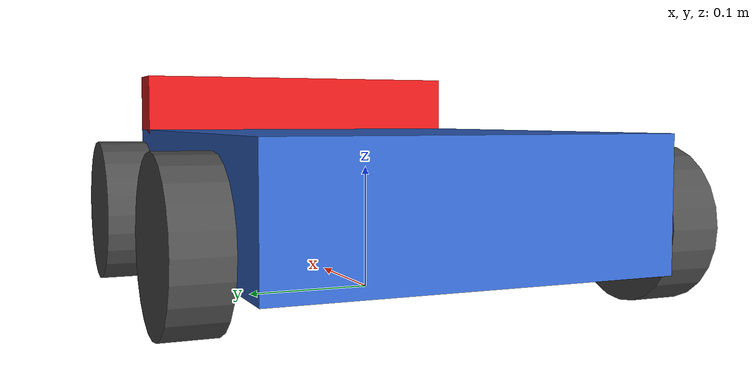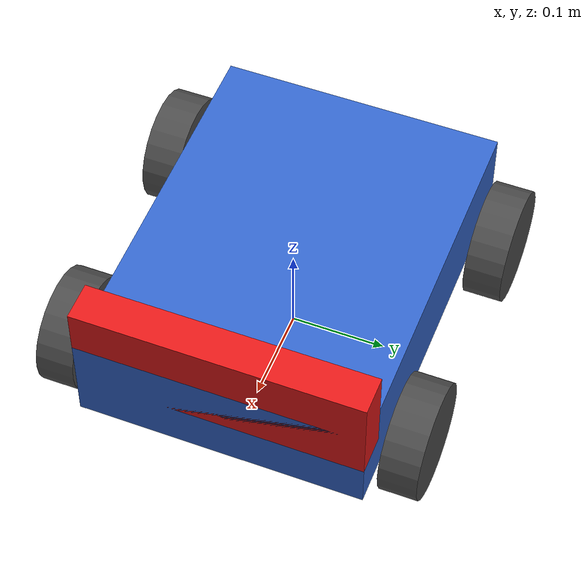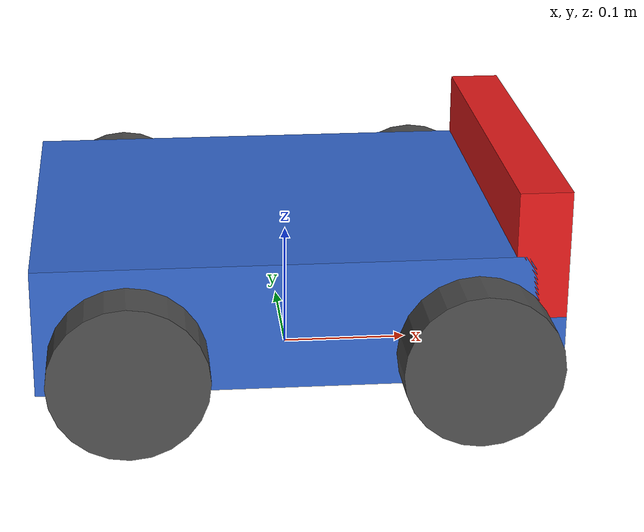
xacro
<?xml version="1.0"?>
<robot xmlns:xacro="http://www.ros.org/wiki/xacro" name="simple_rover">

  <!-- ==================== Parameters ==================== -->
  <xacro:property name="body_length" value="0.4"/>
  <xacro:property name="body_width"  value="0.3"/>
  <xacro:property name="body_height" value="0.1"/>
  <xacro:property name="body_mass"   value="5.0"/>

  <xacro:property name="wheel_radius" value="0.06"/>
  <xacro:property name="wheel_width"  value="0.04"/>
  <xacro:property name="wheel_mass"   value="0.5"/>

  <!-- Wheel placement offsets from base_link center -->
  <xacro:property name="wheel_x_front" value="0.13"/>
  <xacro:property name="wheel_x_rear"  value="-0.13"/>
  <xacro:property name="wheel_y"       value="${(body_width / 2) + (wheel_width / 2) + 0.01}"/>
  <xacro:property name="wheel_z"       value="-0.02"/>

  <!-- ==================== Materials ==================== -->
  <material name="blue">
    <color rgba="0.2 0.4 0.8 1.0"/>
  </material>
  <material name="dark_grey">
    <color rgba="0.3 0.3 0.3 1.0"/>
  </material>
  <material name="red">
    <color rgba="0.9 0.1 0.1 1.0"/>
  </material>

  <!-- ==================== Inertia Macros ==================== -->
  <xacro:macro name="box_inertia" params="m x y z">
    <inertial>
      <mass value="${m}"/>
      <inertia ixx="${m*(y*y+z*z)/12}" ixy="0" ixz="0"
               iyy="${m*(x*x+z*z)/12}" iyz="0"
               izz="${m*(x*x+y*y)/12}"/>
    </inertial>
  </xacro:macro>

  <xacro:macro name="cylinder_inertia" params="m r h">
    <inertial>
      <mass value="${m}"/>
      <inertia ixx="${m*(3*r*r+h*h)/12}" ixy="0" ixz="0"
               iyy="${m*(3*r*r+h*h)/12}" iyz="0"
               izz="${m*r*r/2}"/>
    </inertial>
  </xacro:macro>

  <!-- ==================== Wheel Macro ==================== -->
  <xacro:macro name="wheel" params="prefix x_offset y_sign">
    <link name="${prefix}_wheel_link">
      <visual>
        <geometry>
          <cylinder radius="${wheel_radius}" length="${wheel_width}"/>
        </geometry>
        <material name="dark_grey"/>
      </visual>
      <collision>
        <geometry>
          <cylinder radius="${wheel_radius}" length="${wheel_width}"/>
        </geometry>
      </collision>
      <xacro:cylinder_inertia m="${wheel_mass}" r="${wheel_radius}" h="${wheel_width}"/>
    </link>

    <joint name="${prefix}_wheel_joint" type="continuous">
      <parent link="base_link"/>
      <child link="${prefix}_wheel_link"/>
      <origin xyz="${x_offset} ${y_sign * wheel_y} ${wheel_z}" rpy="${-pi/2} 0 0"/>
      <axis xyz="0 0 1"/>
      <dynamics friction="1.0" damping="0.1"/>
    </joint>
  </xacro:macro>

  <!-- ==================== Base Link ==================== -->
  <link name="base_link">
    <visual>
      <geometry>
        <box size="${body_length} ${body_width} ${body_height}"/>
      </geometry>
      <material name="blue"/>
    </visual>
    <collision>
      <geometry>
        <box size="${body_length} ${body_width} ${body_height}"/>
      </geometry>
    </collision>
    <xacro:box_inertia m="${body_mass}" x="${body_length}" y="${body_width}" z="${body_height}"/>
  </link>

  <!-- Front marker (visual only, no collision/inertia) -->
  <link name="front_marker_link">
    <visual>
      <geometry>
        <box size="0.04 ${body_width} ${body_height}"/>
      </geometry>
      <material name="red"/>
    </visual>
  </link>
  <joint name="front_marker_joint" type="fixed">
    <parent link="base_link"/>
    <child link="front_marker_link"/>
    <origin xyz="${body_length / 2 - 0.02} 0 0.05" rpy="0 0 0"/>
  </joint>

  <!-- base_footprint (on the ground) -->
  <link name="base_footprint"/>
  <joint name="base_footprint_joint" type="fixed">
    <parent link="base_footprint"/>
    <child link="base_link"/>
    <origin xyz="0 0 ${wheel_radius - wheel_z}" rpy="0 0 0"/>
  </joint>

  <!-- ==================== Wheels ==================== -->
  <xacro:wheel prefix="front_left"  x_offset="${wheel_x_front}" y_sign="1"/>
  <xacro:wheel prefix="front_right" x_offset="${wheel_x_front}" y_sign="-1"/>
  <xacro:wheel prefix="rear_left"   x_offset="${wheel_x_rear}"  y_sign="1"/>
  <xacro:wheel prefix="rear_right"  x_offset="${wheel_x_rear}"  y_sign="-1"/>

  <!-- ==================== Gazebo ==================== -->
  <gazebo>
    <plugin filename="gz-sim-diff-drive-system"
            name="gz::sim::systems::DiffDrive">
      <left_joint>front_left_wheel_joint</left_joint>
      <left_joint>rear_left_wheel_joint</left_joint>
      <right_joint>front_right_wheel_joint</right_joint>
      <right_joint>rear_right_wheel_joint</right_joint>
      <wheel_separation>${2 * wheel_y}</wheel_separation>
      <wheel_radius>${wheel_radius}</wheel_radius>
      <max_linear_acceleration>1.0</max_linear_acceleration>
      <min_linear_acceleration>-1.0</min_linear_acceleration>
      <max_angular_acceleration>2.0</max_angular_acceleration>
      <min_angular_acceleration>-2.0</min_angular_acceleration>
      <topic>cmd_vel</topic>
      <odom_topic>odom</odom_topic>
      <tf_topic>tf</tf_topic>
      <frame_id>odom</frame_id>
      <child_frame_id>base_footprint</child_frame_id>
      <odom_publish_frequency>30</odom_publish_frequency>
    </plugin>

    <plugin filename="gz-sim-odometry-publisher-system"
            name="gz::sim::systems::OdometryPublisher">
      <odom_frame>odom</odom_frame>
      <robot_base_frame>base_footprint</robot_base_frame>
      <odom_topic>ground_truth_odom</odom_topic>
      <odom_publish_frequency>30</odom_publish_frequency>
    </plugin>

    <plugin filename="gz-sim-joint-state-publisher-system"
            name="gz::sim::systems::JointStatePublisher">
      <topic>joint_states</topic>
    </plugin>
  </gazebo>

  <!-- Wheel friction (fdir1: rolling direction in link frame) -->
  <gazebo reference="front_left_wheel_link">
    <mu1>1.0</mu1>
    <mu2>0.15</mu2>
    <fdir1>1 0 0</fdir1>
  </gazebo>
  <gazebo reference="front_right_wheel_link">
    <mu1>1.0</mu1>
    <mu2>0.15</mu2>
    <fdir1>1 0 0</fdir1>
  </gazebo>
  <gazebo reference="rear_left_wheel_link">
    <mu1>1.0</mu1>
    <mu2>0.15</mu2>
    <fdir1>1 0 0</fdir1>
  </gazebo>
  <gazebo reference="rear_right_wheel_link">
    <mu1>1.0</mu1>
    <mu2>0.15</mu2>
    <fdir1>1 0 0</fdir1>
  </gazebo>

</robot>
